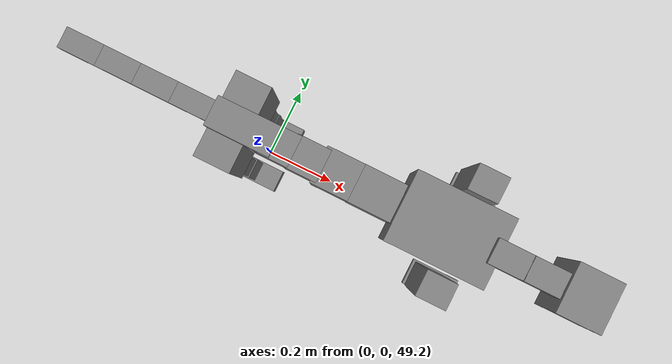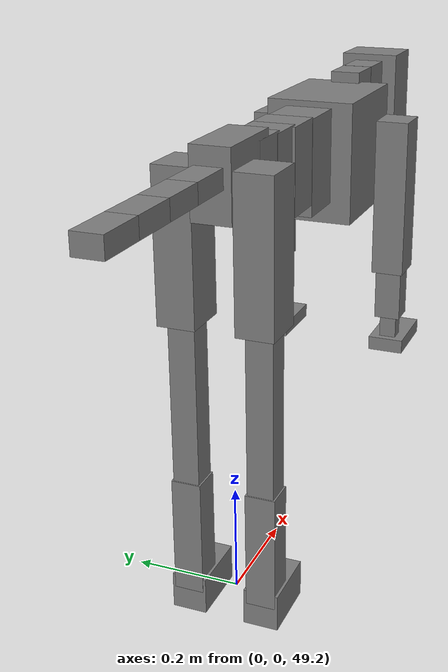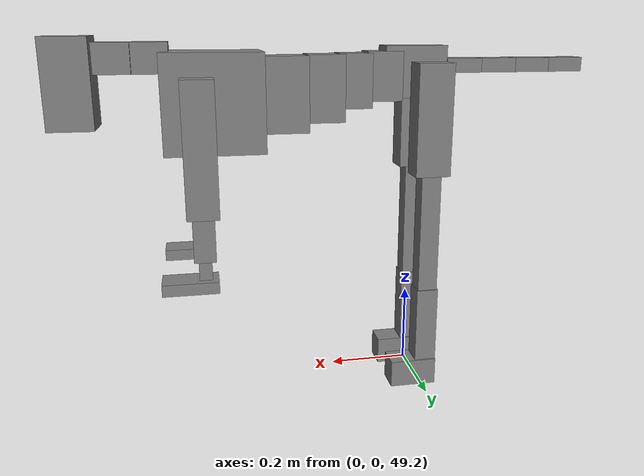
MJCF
<mujoco model="dog">

    <default>
        <joint armature="0.02" stiffness="1" damping="0.2" limited="true"/>
        <geom condim="3" friction="1 0.05 0.05" margin="0.01"/>
        <motor ctrllimited="true" ctrlrange="-1.0 1.0" forcelimited="true" gear="50"/>
    </default>

    <compiler inertiafromgeom="true" angle="radian"/>

    <option timestep="0.016" iterations="50" tolerance="1e-10" solver="Newton" jacobian="dense" cone="pyramidal"/>

    <size nconmax="20000" njmax="60000" nstack="5000000"/>
    <visual>
        <map force="0.1" zfar="30"/>
        <rgba haze="0.15 0.25 0.35 1"/>
        <quality shadowsize="2048"/>
        <global offwidth="800" offheight="800"/>
    </visual>

    <asset>
        <texture type="skybox" builtin="gradient" rgb1="0.3 0.5 0.7" rgb2="0 0 0" width="512" height="512"/>
        <texture name="texplane" type="2d" builtin="checker" rgb1=".2 .3 .4" rgb2=".1 0.15 0.2" width="512" height="512"
                 mark="cross" markrgb=".8 .8 .8"/>
        <texture name="texgeom" type="cube" builtin="flat" mark="cross" width="127" height="1278" rgb1="0.8 0.6 0.4"
                 rgb2="0.8 0.6 0.4" markrgb="1 1 1" random="0.01"/>

        <material name="matplane" reflectance="0.3" texture="texplane" texrepeat="1 1" texuniform="true"/>
        <material name="matgeom" texture="texgeom" texuniform="true" rgba="0.8 0.6 .4 1"/>
    </asset>

    <worldbody>
        <geom name="floor" pos="0 0 0" size="0 0 .25" type="plane" material="matplane" condim="3"/>

        <light directional="false" diffuse=".2 .2 .2" specular="0 0 0" pos="0 0 5" dir="0 0 -1" castshadow="false"/>
        <light mode="targetbodycom" target="torso" directional="false" diffuse=".8 .8 .8" specular="0.3 0.3 0.3"
               pos="0 0 4.0" dir="0 0 -1"/>

        <body name="root" pos="0 0 50">
            <freejoint name="root_1"/>
            <geom type="box" pos="0 0 -0.02" size="0.0774  0.0358  0.063" density="2030"/>

            <body name="spine1" pos="0.054 0 0">
                <joint name="spine1_y" axis="0 1 0" range="0 0.7" limited="true"/>
                <geom type="box" pos="0.02375 0 -0.03" size="0.04375  0.0375  0.05985" density="2030"/>

                <body name="spine2" pos="0.0612 0 0">
                    <joint name="spine2_y" axis="0 1 0" range="-0.15 0.15" limited="true"/>
                    <geom type="box" pos="0.03555  0  -0.04" size="0.04055  0.039  0.06615" density="2030"/>

                    <body name="spine3" pos="0.0730 0 0">
                        <joint name="spine3_y" axis="0 1 0" range="-0.15 0.15" limited="true"/>
                        <geom type="box" pos="0.03555  0  -0.057" size="0.04555  0.0445  0.081" density="2030"/>

                        <body name="spine4" pos="0.0780 0 0">
                            <joint name="spine4_y" axis="0 1 0" range="-0.15 0.15" limited="true"/>
                            <geom type="box" pos="0.05265  0  -0.07" size="0.05265  0.045  0.09135" density="2030"/>

                            <body name="torso" pos="0.1082 0 0">
                                <joint name="torso_y" axis="0 1 0" range="-0.15 0.15" limited="true"/>
                                <geom type="box" pos="0.11925  0  -0.085" size="0.11925  0.085  0.11745"
                                      density="2030"/>

                                <body name="neck1" pos="0.2160  0   0.0180">
                                    <joint name="neck1_y" axis="0 1 0" range="-1.2  -1" limited="true"/>
                                    <geom type="box" pos="0.0423  0  0" size="0.0423  0.03  0.036" density="2325"/>

                                    <body name="neck2" pos="0.0853  0  0">
                                        <joint name="neck2_y" axis="0 1 0" range="0.1  0" limited="true"/>
                                        <geom type="box" pos="0.0423  0  0" size="0.0423  0.03  0.036" density="2325"/>

                                        <body name="head" pos="0.0853  0  0">
                                            <joint name="head_y" axis="0 1 0" range="-0.3  -0.2" limited="true"/>
                                            <geom type="box" pos="0.0531  0  -0.055" size="0.0531  0.06  0.1044"
                                                  density="4030"/>

                                        </body>
                                    </body>
                                </body>

                                <body name="front_shoulder" pos="0.156  0   -0.0480">
                                    <joint name="front_shoulder_y" axis="0 1 0" range="-1 1.5" limited="true"/>
                                    <geom type="box" pos="0 0.13 -0.1305" size="0.0376  0.0322  0.1571" density="1158"/>
                                    <geom type="box" pos="0 -0.13 -0.1305" size="0.0376  0.0322  0.1571"
                                          density="1158"/>

                                    <body name="front_elbow" pos="0  0  -0.2609">
                                        <joint name="front_elbow_y" axis="0 1 0" range="-2 0" limited="true"/>
                                        <geom type="box" pos="0 0.13 -0.0643" size="0.0256  0.0262  0.0643"
                                              density="1081"/>
                                        <geom type="box" pos="0 -0.13 -0.0643" size="0.0256  0.0262  0.0643"
                                              density="1081"/>

                                        <body name="front_wrist" pos="0  0  -0.1286">
                                            <joint name="front_wrist_y" axis="0 1 0" range="-0.2 0" limited="true"/>
                                            <geom type="box" pos="0 0.13 -0.0302" size="0.0152  0.0169  0.0434"
                                                  density="1664"/>
                                            <geom type="box" pos="0 -0.13 -0.0302" size="0.0152  0.0169  0.0434"
                                                  density="1664"/>

                                            <body name="front_finger_end" pos="0  0  -0.0605">
                                                <joint name="front_finger_y" axis="0 1 0" range="-0.4 1"
                                                       limited="true"/>
                                                <geom type="box" pos="0.0359  0.13  0.0009"
                                                      size="0.0658  0.0359  0.0141" density="1515"/>
                                                <geom type="box" pos="0.0359  -0.13  0.0009"
                                                      size="0.0658  0.0359  0.0141" density="1515"/>

                                            </body>

                                        </body>
                                    </body>
                                </body>

                            </body>
                        </body>
                    </body>
                </body>
            </body>

            <body name="back_hip" pos="-0.03 0 -0.018">
                <joint name="back_hip_y" axis="0 1 0" range="-1.5 0.3" limited="true"/>
                <geom type="box" pos="0 0.07 -0.1144" size="0.0439  0.0344  0.1372" density="1154"/>
                <geom type="box" pos="0 -0.07 -0.1144" size="0.0439  0.0344  0.1372" density="1154"/>

                <body name="back_knee" pos="0  0  -0.2287">
                    <joint name="back_knee_y" axis="0 1 0" range="0 2.8" limited="true"/>
                    <geom type="box" pos="0 0.07 -0.1669" size="0.0248  0.0244  0.1824" density="1227"/>
                    <geom type="box" pos="0 -0.07 -0.1669" size="0.0248  0.0244  0.1824" density="1227"/>

                    <body name="back_ankle" pos="0  0  -0.3338">
                        <joint name="back_ankle_y" axis="0 1 0" range="-2.2 0" limited="true"/>
                        <geom type="box" pos="0 0.07 -0.0992" size="0.0275  0.0275  0.1104" density="1284"/>
                        <geom type="box" pos="0 -0.07 -0.0992" size="0.0275  0.0275  0.1104" density="1284"/>

                        <body name="back_toe_end" pos="0  0  -0.1984">
                            <joint name="back_toe_y" axis="0 1 0" range="-0.4 1" limited="true"/>
                            <geom type="box" pos="0.0325  0.07  -0.0195" size="0.0596  0.0325  0.0345" density="1515"/>
                            <geom type="box" pos="0.0325  -0.07  -0.0195" size="0.0596  0.0325  0.0345" density="1515"/>

                        </body>
                    </body>
                </body>
            </body>

            <body name="tail1" pos="-0.074 0 -0.006">
                <joint name="tail1_y" axis="0 1 0" range="-0.2 0.2" limited="true"/>
                <geom type="box" pos="-0.0536  0  0" size="0.045  0.025  0.0175" density="1587"/>

                <body name="tail2" pos="-0.09 0 0">
                    <joint name="tail2_y" axis="0 1 0" range="-0.2 0.2" limited="true"/>
                    <geom type="box" pos="-0.0536  0  0" size="0.045  0.025  0.0175" density="1587"/>

                    <body name="tail3" pos="-0.09 0 0">
                        <joint name="tail3_y" axis="0 1 0" range="-0.2 0.2" limited="true"/>
                        <geom type="box" pos="-0.0536  0  0" size="0.045  0.025  0.0175" density="1587"/>

                        <body name="tail4" pos="-0.09 0 0">
                            <joint name="tail4_y" axis="0 1 0" range="-0.2 0.2" limited="true"/>
                            <geom type="box" pos="-0.0536  0  0" size="0.045  0.025  0.0175" density="1587"/>

                        </body>
                    </body>
                </body>
            </body>
        </body>
    </worldbody>

    <actuator>
        <motor joint="spine1_y" forcerange="-150 150     "/>
        <motor joint="spine2_y" forcerange="-150 150     "/>
        <motor joint="spine3_y" forcerange="-150 150     "/>
        <motor joint="spine4_y" forcerange="-150 150     "/>
        <motor joint="torso_y" forcerange="-150 150     "/>
        <motor joint="neck1_y" forcerange="-100 100       "/>
        <motor joint="neck2_y" forcerange="-100 100       "/>
        <motor joint="head_y" forcerange="-150 150       "/>
        <motor joint="front_shoulder_y" forcerange="-139.05 175.43"/>
        <motor joint="front_elbow_y" forcerange="-159.35 131.06"/>
        <motor joint="front_wrist_y" forcerange="-65.62 69.46"/>
        <motor joint="front_finger_y" forcerange="-83.03 68.46"/>
        <motor joint="back_hip_y" forcerange="-340.87 317.71"/>
        <motor joint="back_knee_y" forcerange="-254.62 300.91"/>
        <motor joint="back_angle_y" forcerange="-246.39 93.00"/>
        <motor joint="back_toe_y" forcerange="-93.06 87.12"/>
        <motor joint="tail1_y" forcerange="-50 50     "/>
        <motor joint="tail2_y" forcerange="-50 50     "/>
        <motor joint="tail3_y" forcerange="-50 50     "/>
        <motor joint="tail4_y" forcerange="-50 50     "/>
    </actuator>
</mujoco>
